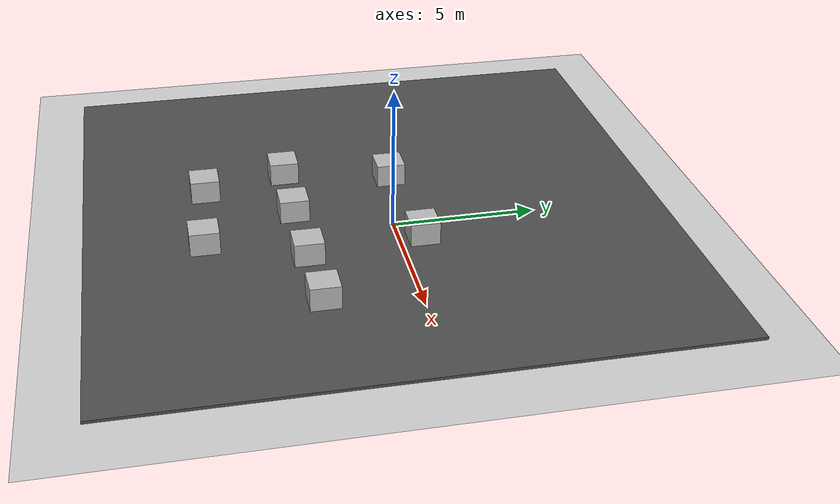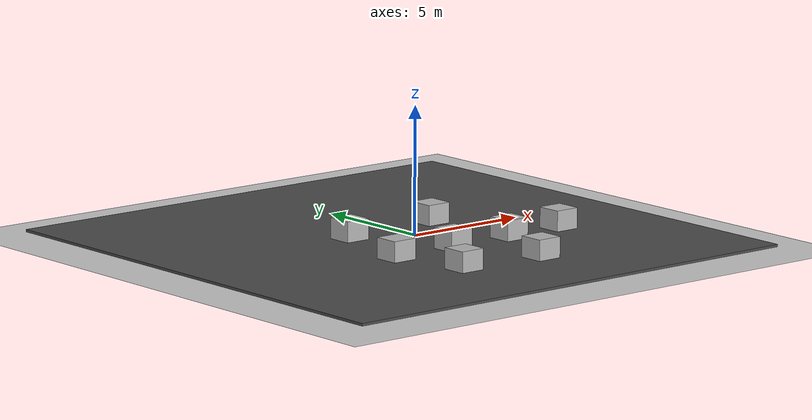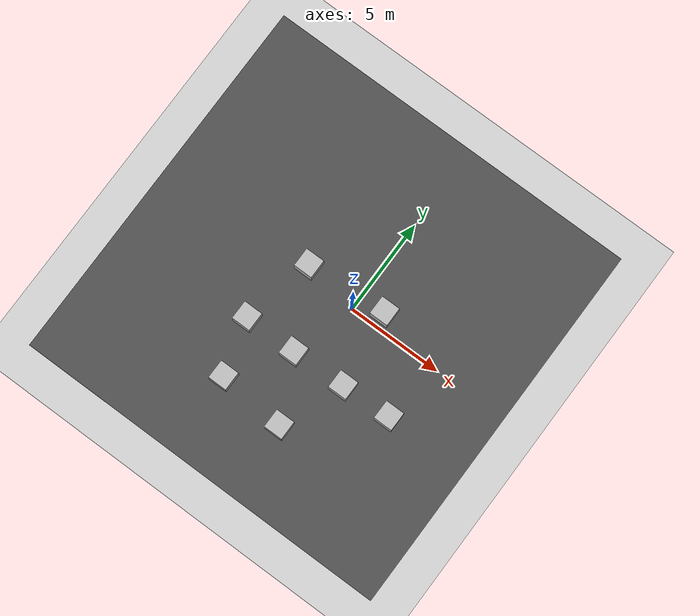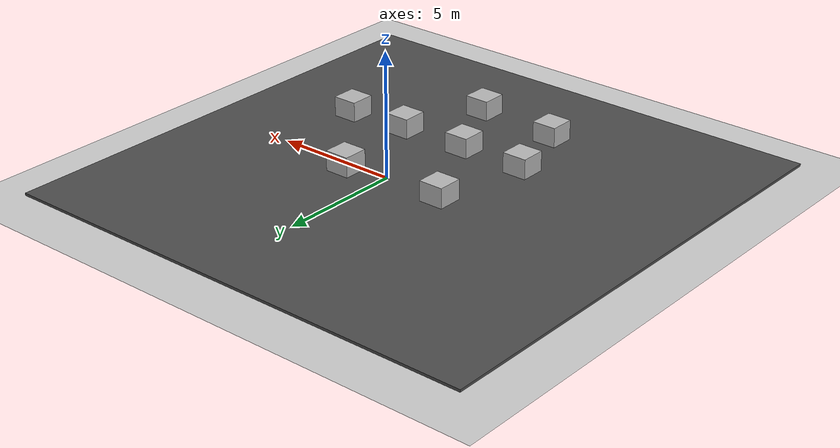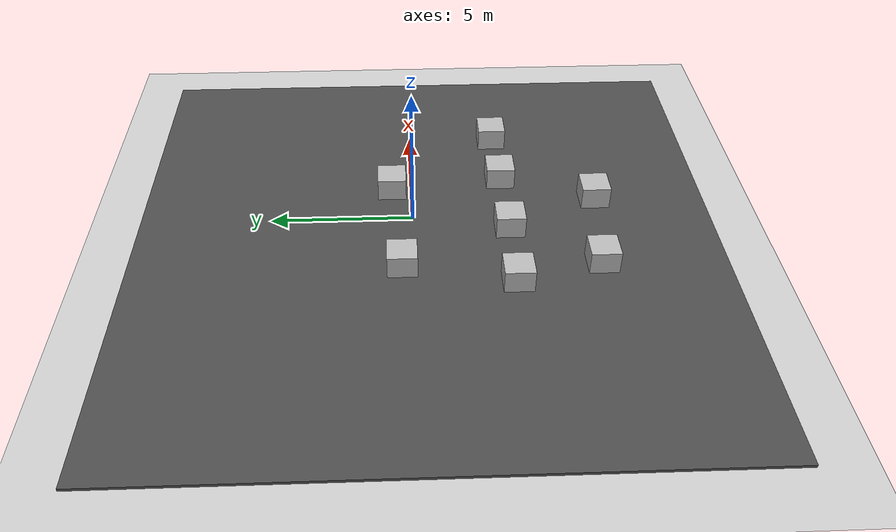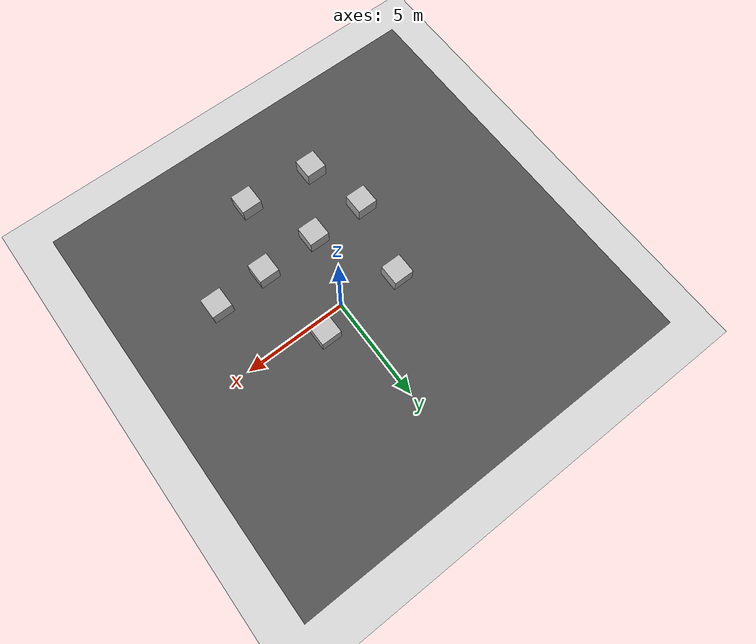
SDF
<sdf version="1.6">
 <world name="default">
  <light name="sun" type="directional">
   <pose>0 0 10 0 -0 0</pose>
   <diffuse>0.8 0.8 0.8 1</diffuse>
   <specular>0.2 0.2 0.2 1</specular>
   <attenuation>
    <range>1000</range>
    <constant>0.9</constant>
    <linear>0.01</linear>
    <quadratic>0.001</quadratic>
   </attenuation>
   <direction>0 0.5 -0.9</direction>
  </light>
  <light name="point_light" type="point">
   <pose>0 -0.377195 6.59868 0 -0 0</pose>
   <diffuse>0.784314 0.784314 0.784314 1</diffuse>
   <specular>0.0980392 0.0980392 0.0980392 1</specular>
   <attenuation>
    <range>50</range>
    <constant>0.8</constant>
    <linear>0</linear>
    <quadratic>0.001</quadratic>
   </attenuation>
   <cast_shadows>0</cast_shadows>
   <direction>0 0 -1</direction>
  </light>
  <model name="ground_plane">
   <static>1</static>
   <link name="link">
    <collision name="collision">
     <geometry><plane><normal>0 0 1</normal><size>100 100</size></plane></geometry>
     <surface>
      <contact><collide_bitmask>65535</collide_bitmask></contact>
      <friction><ode><mu>100</mu><mu2>50</mu2></ode></friction>
     </surface>
    </collision>
    <visual name="visual">
     <cast_shadows>0</cast_shadows>
     <geometry><plane><normal>0 0 1</normal><size>100 100</size></plane></geometry>
     <material>
      <script><uri>file://media/materials/scripts/gazebo.material</uri><name>Gazebo/Grey</name></script>
     </material>
    </visual>
   </link>
  </model>
  <gravity>0 0 -9.8</gravity>
  <magnetic_field>6e-06 2.3e-05 -4.2e-05</magnetic_field>
  <atmosphere type="adiabatic"/>
  <physics name="default_physics" default="0" type="ode">
   <max_step_size>0.001</max_step_size>
   <real_time_factor>1</real_time_factor>
   <real_time_update_rate>1000</real_time_update_rate>
  </physics>
  <scene><ambient>0.4 0.4 0.4 1</ambient><background>0.7 0.7 0.7 1</background><shadows>1</shadows></scene>
  <audio><device>default</device></audio>
  <spherical_coordinates>
   <surface_model>EARTH_WGS84</surface_model>
   <latitude_deg>0</latitude_deg>
   <longitude_deg>0</longitude_deg>
   <elevation>0</elevation>
   <heading_deg>0</heading_deg>
  </spherical_coordinates>
  <model name="box">
   <pose>-3.67133 -3.3225 0.5 0 -0 0</pose>
   <static>1</static>
   <link name="link">
    <inertial>
     <mass>1</mass>
     <inertia><ixx>0.083</ixx><ixy>0</ixy><ixz>0</ixz><iyy>0.083</iyy><iyz>0</iyz><izz>0.083</izz></inertia>
    </inertial>
    <collision name="collision"><geometry><box><size>1 1 1</size></box></geometry></collision>
    <visual name="visual"><geometry><box><size>1 1 1</size></box></geometry></visual>
   </link>
  </model>
  <model name="box_0">
   <pose>-0.939633 -3.32693 0.5 0 -0 0</pose>
   <static>1</static>
   <link name="link">
    <inertial>
     <mass>1</mass>
     <inertia><ixx>0.083</ixx><ixy>0</ixy><ixz>0</ixz><iyy>0.083</iyy><iyz>0</iyz><izz>0.083</izz></inertia>
    </inertial>
    <collision name="collision"><geometry><box><size>1 1 1</size></box></geometry></collision>
    <visual name="visual"><geometry><box><size>1 1 1</size></box></geometry></visual>
   </link>
  </model>
  <model name="box_1">
   <pose>1.87799 -3.23631 0.5 0 -0 0</pose>
   <static>1</static>
   <link name="link">
    <inertial>
     <mass>1</mass>
     <inertia><ixx>0.083</ixx><ixy>0</ixy><ixz>0</ixz><iyy>0.083</iyy><iyz>0</iyz><izz>0.083</izz></inertia>
    </inertial>
    <collision name="collision"><geometry><box><size>1 1 1</size></box></geometry></collision>
    <visual name="visual"><geometry><box><size>1 1 1</size></box></geometry></visual>
   </link>
  </model>
  <model name="box_2">
   <pose>0.594572 -6.5035 0.5 0 -0 0</pose>
   <static>1</static>
   <link name="link">
    <inertial>
     <mass>1</mass>
     <inertia><ixx>0.083</ixx><ixy>0</ixy><ixz>0</ixz><iyy>0.083</iyy><iyz>0</iyz><izz>0.083</izz></inertia>
    </inertial>
    <collision name="collision"><geometry><box><size>1 1 1</size></box></geometry></collision>
    <visual name="visual"><geometry><box><size>1 1 1</size></box></geometry></visual>
   </link>
  </model>
  <model name="box_3">
   <pose>-2.87195 -6.2137 0.5 0 -0 0</pose>
   <static>1</static>
   <link name="link">
    <inertial>
     <mass>1</mass>
     <inertia><ixx>0.083</ixx><ixy>0</ixy><ixz>0</ixz><iyy>0.083</iyy><iyz>0</iyz><izz>0.083</izz></inertia>
    </inertial>
    <collision name="collision"><geometry><box><size>1 1 1</size></box></geometry></collision>
    <visual name="visual"><geometry><box><size>1 1 1</size></box></geometry></visual>
   </link>
  </model>
  <model name="box_4">
   <pose>4.44361 -3.12717 0.5 0 -0 0</pose>
   <static>1</static>
   <link name="link">
    <inertial>
     <mass>1</mass>
     <inertia><ixx>0.083</ixx><ixy>0</ixy><ixz>0</ixz><iyy>0.083</iyy><iyz>0</iyz><izz>0.083</izz></inertia>
    </inertial>
    <collision name="collision"><geometry><box><size>1 1 1</size></box></geometry></collision>
    <visual name="visual"><geometry><box><size>1 1 1</size></box></geometry></visual>
   </link>
  </model>
  <model name="box_5">
   <pose>1.36051 0.713663 0.5 0 -0 0</pose>
   <static>1</static>
   <link name="link">
    <inertial>
     <mass>1</mass>
     <inertia><ixx>0.083</ixx><ixy>0</ixy><ixz>0</ixz><iyy>0.083</iyy><iyz>0</iyz><izz>0.083</izz></inertia>
    </inertial>
    <collision name="collision"><geometry><box><size>1 1 1</size></box></geometry></collision>
    <visual name="visual"><geometry><box><size>1 1 1</size></box></geometry></visual>
   </link>
  </model>
  <model name="box_6">
   <pose>-2.842 0.418088 0.5 0 -0 0</pose>
   <static>1</static>
   <link name="link">
    <inertial>
     <mass>1</mass>
     <inertia><ixx>0.083</ixx><ixy>0</ixy><ixz>0</ixz><iyy>0.083</iyy><iyz>0</iyz><izz>0.083</izz></inertia>
    </inertial>
    <collision name="collision"><geometry><box><size>1 1 1</size></box></geometry></collision>
    <visual name="visual"><geometry><box><size>1 1 1</size></box></geometry></visual>
   </link>
  </model>
  <model name="asphalt_plane">
   <static>1</static>
   <link name="link">
    <collision name="collision"><geometry><box><size>20 20 0.1</size></box></geometry></collision>
    <visual name="visual">
     <cast_shadows>0</cast_shadows>
     <geometry><box><size>20 20 0.1</size></box></geometry>
     <material>
      <script>
       <uri>model://asphalt_plane/materials/scripts</uri>
       <uri>model://asphalt_plane/materials/textures</uri>
       <name>vrc/asphalt</name>
      </script>
     </material>
    </visual>
   </link>
   <pose>-1.1611 -0.476954 0.15 0 -0 0</pose>
  </model>
 </world>
</sdf>
